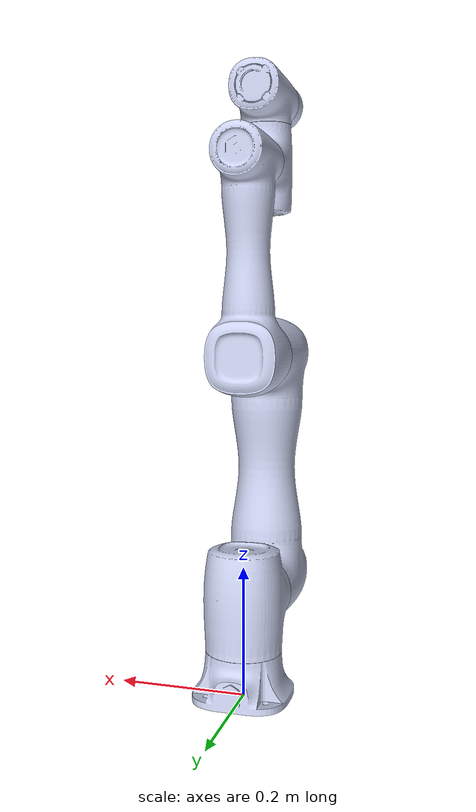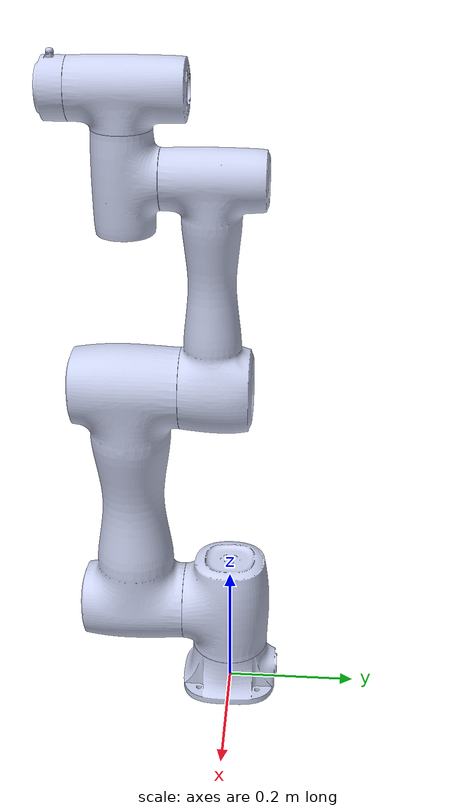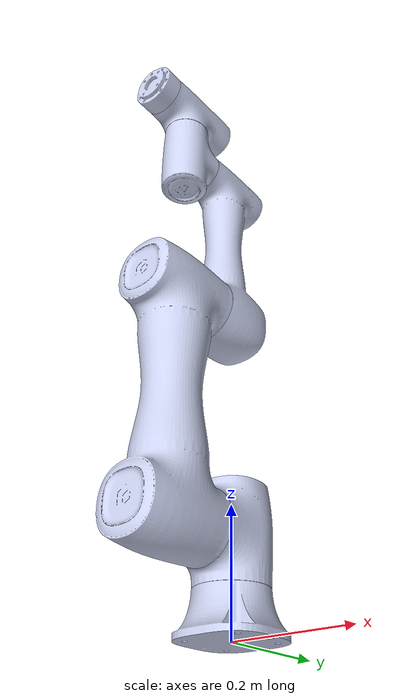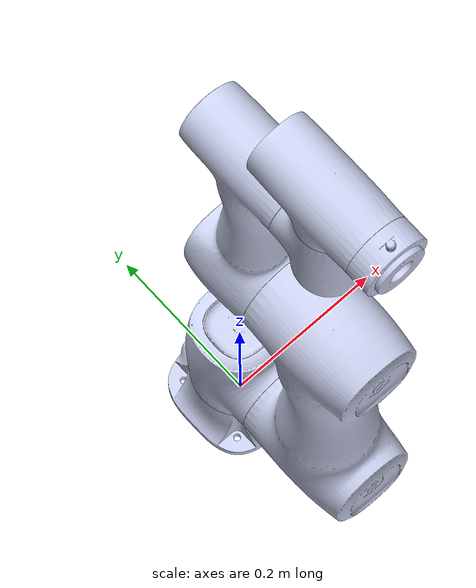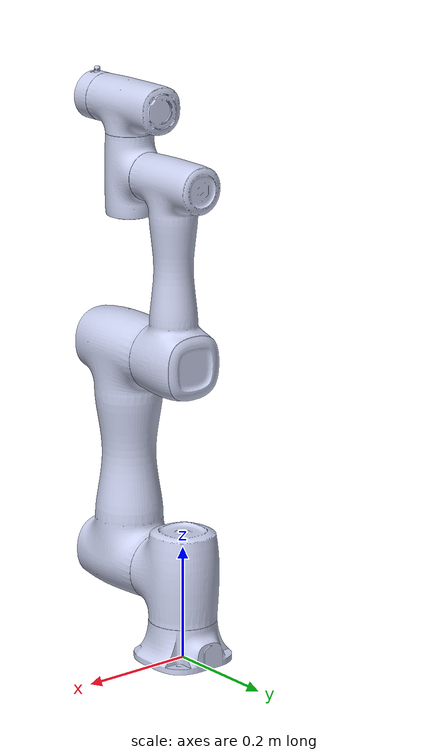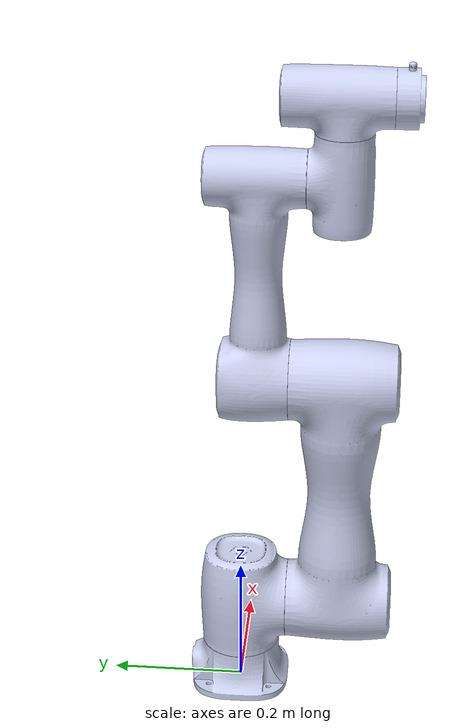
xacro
<?xml version="1.0"?>

<robot name="cr7_robot"  xmlns:xacro="http://ros.org/wiki/xacro">
    <link name="dummy_link" />
  <link
    name="base_link">
    <inertial>
      <origin
        xyz="-7.75881826404344E-06 0.00191109737802069 0.0289949710713939"
        rpy="0 0 0" />
      <mass
        value="0.908795453638862" />
      <inertia
        ixx="0.00145446136430631"
        ixy="4.10411509661615E-08"
        ixz="-1.83603068187756E-07"
        iyy="0.00134497445765809"
        iyz="-6.24662501711042E-06"
        izz="0.00215495523232905" />
    </inertial>
    <visual>
      <origin
        xyz="0 0 0"
        rpy="0 0 0" />
      <geometry>
        <mesh
          filename="file://$(find cr_description)/meshes/cr7/base_link0.STL" />
      </geometry>
      <material
        name="">
        <color
          rgba="0.792156862745098 0.819607843137255 0.933333333333333 1" />
      </material>
    </visual>
    <collision>
      <origin
        xyz="0 0 0"
        rpy="0 0 0" />
      <geometry>
        <mesh
          filename="file://$(find cr_description)/meshes/cr7/base_link0.STL" />
      </geometry>
    </collision>
  </link>

<link  name="world"/>
<joint name="world_joint" type="fixed">
    <parent link="world" />
    <child  link="dummy_link" />
  </joint>

  <joint name="dummy_joint" type="fixed">
    <parent link="dummy_link" />
    <child  link="base_link" />
  </joint>

  <link
    name="Link1">
    <inertial>
      <origin
        xyz="2.42083892138974E-07 -0.00325669708857515 -0.00767435596457115"
        rpy="0 0 0" />
      <mass
        value="1.6123155679073" />
      <inertia
        ixx="0.00291211377650885"
        ixy="-7.47419584239082E-09"
        ixz="1.94780650217368E-08"
        iyy="0.00281918869862419"
        iyz="0.000440963272842605"
        izz="0.00328358201221721" />
    </inertial>
    <visual>
      <origin
        xyz="0 0 0"
        rpy="0 0 0" />
      <geometry>
        <mesh
          filename="file://$(find cr_description)/meshes/cr7/J1.STL" />
      </geometry>
      <material
        name="">
        <color
          rgba="0.792156862745098 0.819607843137255 0.933333333333333 1" />
      </material>
    </visual>
    <collision>
      <origin
        xyz="0 0 0"
        rpy="0 0 0" />
      <geometry>
        <mesh
          filename="file://$(find cr_description)/meshes/cr7/J1.STL" />
      </geometry>
    </collision>
  </link>
  <joint
    name="joint1"
    type="revolute">
    <origin
      xyz="0 0 0.147"
      rpy="0 0 0" />
    <parent
      link="base_link" />
    <child
      link="Link1" />
    <axis
      xyz="0 0 -1" />
    <limit
      lower="-6.28"
      upper="6.28"
      effort="300"
      velocity="100" />
  </joint>
  <link
    name="Link2">
    <inertial>
      <origin
        xyz="-0.188500103625708 -7.46110088887752E-07 0.142319304936727"
        rpy="0 0 0" />
      <mass
        value="5.28764336862191" />
      <inertia
        ixx="0.00860086052884714"
        ixy="3.30521626209469E-09"
        ixz="-4.99788929762243E-09"
        iyy="0.0181761454963347"
        iyz="-1.56481985512198E-08"
        izz="0.0189188799857172" />
    </inertial>
    <visual>
      <origin
        xyz="0 0 0"
        rpy="0 0 0" />
      <geometry>
        <mesh
          filename="file://$(find cr_description)/meshes/cr7/J2.STL" />
      </geometry>
      <material
        name="">
        <color
          rgba="0.792156862745098 0.819607843137255 0.933333333333333 1" />
      </material>
    </visual>
    <collision>
      <origin
        xyz="0 0 0"
        rpy="0 0 0" />
      <geometry>
        <mesh
          filename="file://$(find cr_description)/meshes/cr7/J2.STL" />
      </geometry>
    </collision>
  </link>
  <joint
    name="joint2"
    type="revolute">
    <origin
      xyz="0 0 0"
      rpy="-1.57080420997483 1.57079631189374 -3.14158502419526" />
    <parent
      link="Link1" />
    <child
      link="Link2" />
    <axis
      xyz="0 0 1" />
    <limit
      lower="-6.28"
      upper="6.28"
      effort="300"
      velocity="100" />
  </joint>
  <link
    name="Link3">
    <inertial>
      <origin
        xyz="-0.129084033261017 0.000409825982416691 -0.0024891265183234"
        rpy="0 0 0" />
      <mass
        value="2.64536322797469" />
      <inertia
        ixx="0.00313429310657436"
        ixy="8.58567214179718E-06"
        ixz="0.0001236219933347"
        iyy="0.00583755221707048"
        iyz="-3.84538201491329E-07"
        izz="0.00609610718076456" />
    </inertial>
    <visual>
      <origin
        xyz="0 0 0"
        rpy="0 0 0" />
      <geometry>
        <mesh
          filename="file://$(find cr_description)/meshes/cr7/J3.STL" />
      </geometry>
      <material
        name="">
        <color
          rgba="0.792156862745098 0.819607843137255 0.933333333333333 1" />
      </material>
    </visual>
    <collision>
      <origin
        xyz="0 0 0"
        rpy="0 0 0" />
      <geometry>
        <mesh
          filename="file://$(find cr_description)/meshes/cr7/J3.STL" />
      </geometry>
    </collision>
  </link>
  <joint
    name="joint3"
    type="revolute">
    <origin
      xyz="-0.377 0 0.025"
      rpy="0 0 0" />
    <parent
      link="Link2" />
    <child
      link="Link3" />
    <axis
      xyz="0 0 1" />
    <limit
      lower="-2.79"
      upper="2.79"
      effort="300"
      velocity="100" />
  </joint>
  <link
    name="Link4">
    <inertial>
      <origin
        xyz="-0.00098049161725656 -0.00207570116557487 -0.00155508673006152"
        rpy="0 0 0" />
      <mass
        value="0.670573134819647" />
      <inertia
        ixx="0.000669371731621344"
        ixy="-5.32805461934157E-08"
        ixz="3.52586632357936E-07"
        iyy="0.000654228488306913"
        iyz="0.000110801103983602"
        izz="0.000653654751027863" />
    </inertial>
    <visual>
      <origin
        xyz="0 0 0"
        rpy="0 0 0" />
      <geometry>
        <mesh
          filename="file://$(find cr_description)/meshes/cr7/J4.STL" />
      </geometry>
      <material
        name="">
        <color
          rgba="0.792156862745098 0.819607843137255 0.933333333333333 1" />
      </material>
    </visual>
    <collision>
      <origin
        xyz="0 0 0"
        rpy="0 0 0" />
      <geometry>
        <mesh
          filename="file://$(find cr_description)/meshes/cr7/J4.STL" />
      </geometry>
    </collision>
  </link>
  <joint
    name="joint4"
    type="revolute">
    <origin
      xyz="-0.306999999999969 0 0.116"
      rpy="0 0 -1.57079677671549" />
    <parent
      link="Link3" />
    <child
      link="Link4" />
    <axis
      xyz="0 0 0.999999999969965" />
    <limit
      lower="-6.28"
      upper="6.28"
      effort="300"
      velocity="100" />
  </joint>
  <link
    name="Link5">
    <inertial>
      <origin
        xyz="-0.00139233872001005 -0.00449255371185306 -0.00130478579616922"
        rpy="0 0 0" />
      <mass
        value="0.725828190120638" />
      <inertia
        ixx="0.00073002940905788"
        ixy="1.46530702319641E-07"
        ixz="-1.21461719923983E-07"
        iyy="0.000710023403641111"
        iyz="-0.000119103387993809"
        izz="0.000712169450212708" />
    </inertial>
    <visual>
      <origin
        xyz="0 0 0"
        rpy="0 0 0" />
      <geometry>
        <mesh
          filename="file://$(find cr_description)/meshes/cr7/J5.STL" />
      </geometry>
      <material
        name="">
        <color
          rgba="0.792156862745098 0.819607843137255 0.933333333333333 1" />
      </material>
    </visual>
    <collision>
      <origin
        xyz="0 0 0"
        rpy="0 0 0" />
      <geometry>
        <mesh
          filename="file://$(find cr_description)/meshes/cr7/J5.STL" />
      </geometry>
    </collision>
  </link>
  <joint
    name="joint5"
    type="revolute">
    <origin
      xyz="0 -0.116 0"
      rpy="1.5707963267949 0 0" />
    <parent
      link="Link4" />
    <child
      link="Link5" />
    <axis
      xyz="0 0 -1" />
    <limit
      lower="-6.28"
      upper="6.28"
      effort="300"
      velocity="100" />
  </joint>
  <link
    name="Link6">
    <inertial>
      <origin
        xyz="-0.00134099075400824 9.61028193323665E-05 -0.0192856508049091"
        rpy="0 0 0" />
      <mass
        value="0.157885328078873" />
      <inertia
        ixx="7.80450650011017E-05"
        ixy="3.56327806101489E-09"
        ixz="-3.98217377472077E-11"
        iyy="7.91678595101433E-05"
        iyz="-1.3821786505554E-07"
        izz="0.000129505866960959" />
    </inertial>
    <visual>
      <origin
        xyz="0 0 0"
        rpy="0 0 0" />
      <geometry>
        <mesh
          filename="file://$(find cr_description)/meshes/cr7/J6.STL" />
      </geometry>
      <material
        name="">
        <color
          rgba="0.792156862745098 0.819607843137255 0.933333333333333 1" />
      </material>
    </visual>
    <collision>
      <origin
        xyz="0 0 0"
        rpy="0 0 0" />
      <geometry>
        <mesh
          filename="file://$(find cr_description)/meshes/cr7/J6.STL" />
      </geometry>
    </collision>
  </link>
  <joint
    name="joint6"
    type="revolute">
    <origin
      xyz="0 0.104999656773681 0"
      rpy="-1.5707963267949 0 0" />
    <parent
      link="Link5" />
    <child
      link="Link6" />
    <axis
      xyz="0 0 -1" />
    <limit
      lower="-6.28"
      upper="6.28"
      effort="300"
      velocity="100" />
  </joint>
 <xacro:macro name="cr7_transmission" params="joint_name">
     <transmission name="${joint_name}_trans">
       <type>transmission_interface/SimpleTransmission</type>
       <joint name="${joint_name}">
         <hardwareInterface>hardware_interface/PositionJointInterface</hardwareInterface>
       </joint>
       <actuator name="${joint_name}_motor">
         <mechanicalReduction>1</mechanicalReduction>
       </actuator>
     </transmission>
 </xacro:macro>

 <xacro:cr7_transmission joint_name="joint1"/>
 <xacro:cr7_transmission joint_name="joint2"/>
 <xacro:cr7_transmission joint_name="joint3"/>
 <xacro:cr7_transmission joint_name="joint4"/>
 <xacro:cr7_transmission joint_name="joint5"/>
 <xacro:cr7_transmission joint_name="joint6"/>
 <!-- ros_control plugin -->
 <gazebo>
     <plugin name="gazebo_ros_control" filename="libgazebo_ros_control.so">
         <robotNamespace>/cr7_robot</robotNamespace>
     </plugin>
 </gazebo>

</robot>
